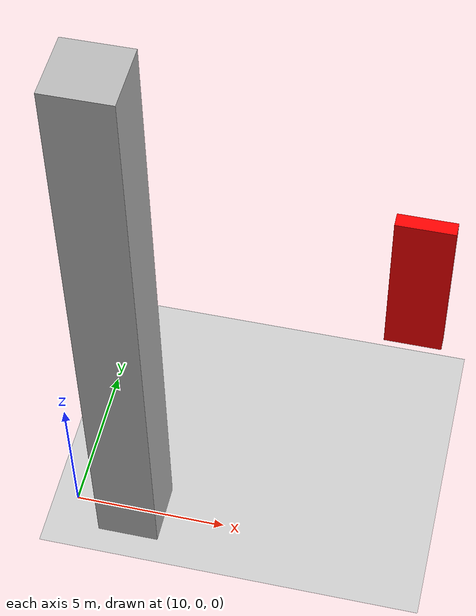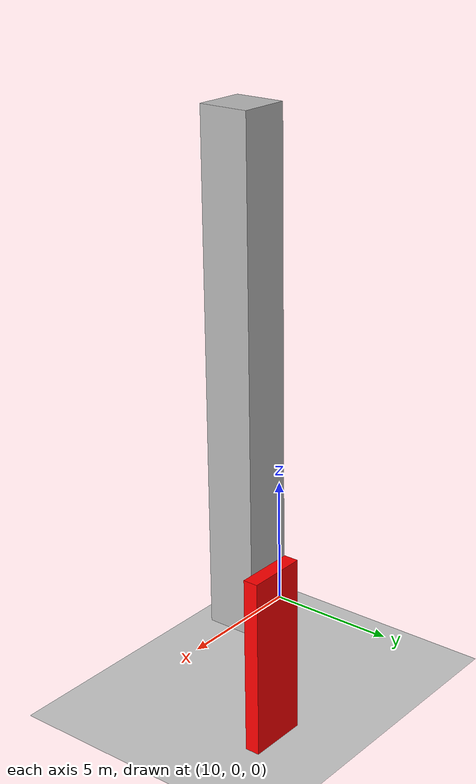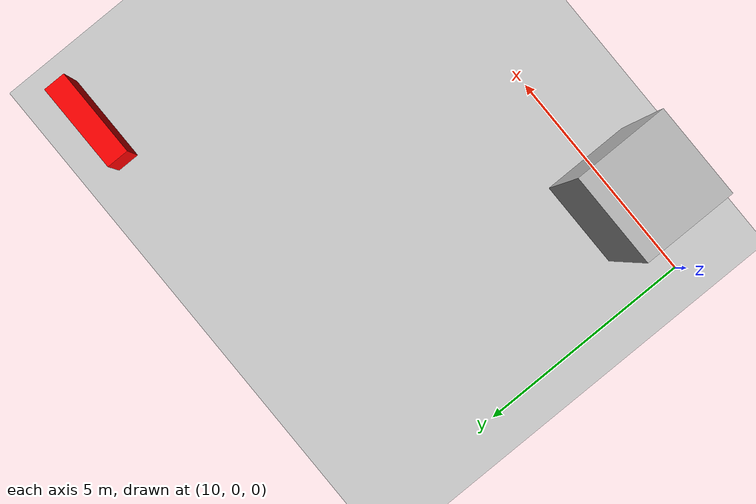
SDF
<?xml version="1.0" encoding="UTF-8"?>
<sdf version="1.9">
  <world name="default">
    <physics type="ode">
      <max_step_size>0.004</max_step_size>
      <real_time_factor>1.0</real_time_factor>
      <real_time_update_rate>250</real_time_update_rate>
    </physics>
    <gravity>0 0 -9.8</gravity>
    <magnetic_field>6e-06 2.3e-05 -4.2e-05</magnetic_field>
    <atmosphere type="adiabatic"/>
    <scene>
      <grid>false</grid>
      <ambient>0.4 0.4 0.4 1</ambient>
      <background>0.7 0.7 0.7 1</background>
      <shadows>true</shadows>
    </scene>
    <model name="ground_plane">
      <static>true</static>
      <link name="link">
        <collision name="collision">
          <geometry>
            <plane>
              <normal>0 0 1</normal>
              <size>1 1</size>
            </plane>
          </geometry>
          <surface>
            <friction>
              <ode/>
            </friction>
            <bounce/>
            <contact/>
          </surface>
        </collision>
        <visual name="visual">
          <geometry>
            <plane>
              <normal>0 0 1</normal>
              <size>500 500</size>
            </plane>
          </geometry>
          <material>
            <ambient>0.8 0.8 0.8 1</ambient>
            <diffuse>0.8 0.8 0.8 1</diffuse>
            <specular>0.8 0.8 0.8 1</specular>
          </material>
        </visual>
        <pose>0 0 0 0 -0 0</pose>
        <inertial>
          <pose>0 0 0 0 -0 0</pose>
          <mass>1</mass>
          <inertia>
            <ixx>1</ixx>
            <ixy>0</ixy>
            <ixz>0</ixz>
            <iyy>1</iyy>
            <iyz>0</iyz>
            <izz>1</izz>
          </inertia>
        </inertial>
        <enable_wind>false</enable_wind>
      </link>
      <pose>0 0 0 0 -0 0</pose>
      <self_collide>false</self_collide>
    </model>
    <model name="test_obstacle">
      <static>true</static>
      <pose>12 0 10 0 0 0</pose>
      <link name="obstacle_link">
        <collision name="collision">
          <geometry>
            <box>
              <size>2 2 20</size>
            </box>
          </geometry>
        </collision>
        <visual name="visual">
          <geometry>
            <box>
              <size>2 2 20</size>
            </box>
          </geometry>
        </visual>
      </link>
    </model>

    <!-- CAMERA DETECTION TARGET -->

    <model name="red_detection_target">
      <static>true</static>

      <!-- Target placed on the second survey leg -->
      <pose>20 7.5 5 0 0 0</pose>

      <link name="target_link">

        <inertial>
          <mass>0.1</mass>
          <inertia>
            <ixx>0.001</ixx>
            <iyy>0.001</iyy>
            <izz>0.001</izz>
            <ixy>0</ixy>
            <ixz>0</ixz>
            <iyz>0</iyz>
          </inertia>
        </inertial>

        <collision name="collision">
          <geometry>
            <box>
              <size>2 0.5 6</size>
            </box>
          </geometry>
        </collision>

        <visual name="visual">
          <geometry>
            <box>
              <size>2 0.5 6</size>
            </box>
          </geometry>

          <material>
            <ambient>1 0 0 1</ambient>
            <diffuse>1 0 0 1</diffuse>
            <specular>0.2 0.2 0.2 1</specular>
          </material>
        </visual>

      </link>
    </model>

    <light name="sunUTC" type="directional">
      <pose>0 0 500 0 -0 0</pose>
      <cast_shadows>true</cast_shadows>
      <intensity>1</intensity>
      <direction>0.001 0.625 -0.78</direction>
      <diffuse>0.904 0.904 0.904 1</diffuse>
      <specular>0.271 0.271 0.271 1</specular>
      <attenuation>
        <range>2000</range>
        <linear>0</linear>
        <constant>1</constant>
        <quadratic>0</quadratic>
      </attenuation>
      <spot>
        <inner_angle>0</inner_angle>
        <outer_angle>0</outer_angle>
        <falloff>0</falloff>
      </spot>
    </light>
    <spherical_coordinates>
      <surface_model>EARTH_WGS84</surface_model>
      <world_frame_orientation>ENU</world_frame_orientation>
      <latitude_deg>47.397971057728974</latitude_deg>
      <longitude_deg> 8.546163739800146</longitude_deg>
      <elevation>0</elevation>
    </spherical_coordinates>
  </world>
</sdf>
